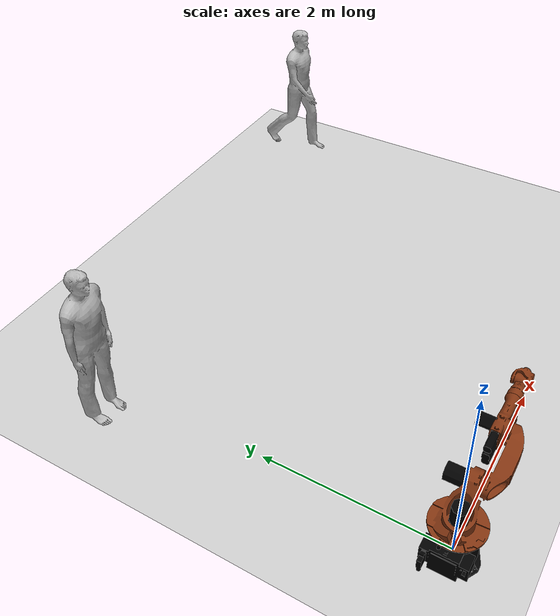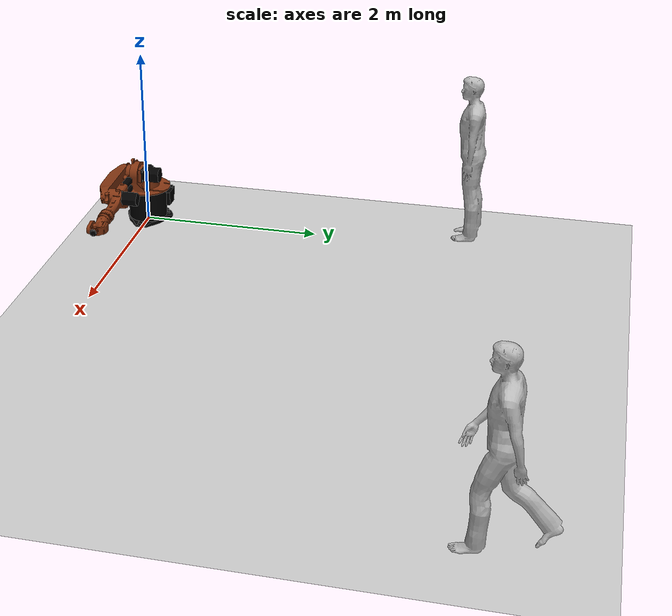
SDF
<sdf version="1.6">
 <world name="default">
  <light name="sun" type="directional">
   <pose>0 0 10 0 -0 0</pose>
   <diffuse>0.8 0.8 0.8 1</diffuse>
   <specular>0.2 0.2 0.2 1</specular>
   <attenuation>
    <range>1000</range>
    <constant>0.9</constant>
    <linear>0.01</linear>
    <quadratic>0.001</quadratic>
   </attenuation>
   <direction>-0.5 0.1 -0.9</direction>
  </light>
  <model name="ground_plane">
   <static>1</static>
   <link name="link">
    <collision name="collision">
     <geometry><plane><normal>0 0 1</normal><size>100 100</size></plane></geometry>
     <surface><friction><ode><mu>100</mu><mu2>50</mu2></ode></friction></surface>
    </collision>
    <visual name="visual">
     <cast_shadows>0</cast_shadows>
     <geometry><plane><normal>0 0 1</normal><size>100 100</size></plane></geometry>
     <material>
      <script><uri>file://media/materials/scripts/gazebo.material</uri><name>Gazebo/Grey</name></script>
     </material>
    </visual>
   </link>
  </model>
  <gravity>0 0 -9.8</gravity>
  <magnetic_field>6e-06 2.3e-05 -4.2e-05</magnetic_field>
  <atmosphere type="adiabatic"/>
  <physics name="default_physics" default="0" type="ode">
   <max_step_size>0.001</max_step_size>
   <real_time_factor>1</real_time_factor>
   <real_time_update_rate>1000</real_time_update_rate>
  </physics>
  <scene><ambient>0.4 0.4 0.4 1</ambient><background>0.7 0.7 0.7 1</background><shadows>1</shadows></scene>
  <spherical_coordinates>
   <surface_model>EARTH_WGS84</surface_model>
   <latitude_deg>0</latitude_deg>
   <longitude_deg>0</longitude_deg>
   <elevation>0</elevation>
   <heading_deg>0</heading_deg>
  </spherical_coordinates>
  <model name="kuka_kr16_2">
   <link name="base_link">
    <inertial>
     <mass>2</mass>
     <inertia><ixx>0.01</ixx><ixy>0</ixy><ixz>0</ixz><iyy>0.01</iyy><iyz>0</iyz><izz>0.01</izz></inertia>
    </inertial>
    <collision name="base_link_collision">
     <geometry>
      <mesh>
       <scale>1 1 1</scale>
       <uri>/home/yesser/ros_qtc_plugin/src/rvizglabre/modelos/kr16_2/collision/base_link.stl</uri>
      </mesh>
     </geometry>
    </collision>
    <visual name="base_link_visual">
     <geometry>
      <mesh>
       <scale>1 1 1</scale>
       <uri>/home/yesser/ros_qtc_plugin/src/rvizglabre/modelos/kr16_2/visual/base_link.dae</uri>
      </mesh>
     </geometry>
    </visual>
   </link>
   <joint name="world-base_link-fixed" type="fixed"><child>base_link</child><parent>world</parent></joint>
   <link name="link_1">
    <pose>0 0 0.675 0 -0 0</pose>
    <inertial>
     <mass>2</mass>
     <inertia><ixx>0.01</ixx><ixy>0</ixy><ixz>0</ixz><iyy>0.01</iyy><iyz>0</iyz><izz>0.01</izz></inertia>
    </inertial>
    <collision name="link_1_collision">
     <geometry>
      <mesh>
       <scale>1 1 1</scale>
       <uri>/home/yesser/ros_qtc_plugin/src/rvizglabre/modelos/kr16_2/collision/link_1.stl</uri>
      </mesh>
     </geometry>
    </collision>
    <visual name="link_1_visual">
     <geometry>
      <mesh>
       <scale>1 1 1</scale>
       <uri>/home/yesser/ros_qtc_plugin/src/rvizglabre/modelos/kr16_2/visual/link_1.dae</uri>
      </mesh>
     </geometry>
    </visual>
   </link>
   <joint name="joint_1" type="revolute">
    <child>link_1</child>
    <parent>base_link</parent>
    <axis>
     <xyz>0 0 -1</xyz>
     <limit><lower>-3.22886</lower><upper>3.22886</upper><velocity>102.72271</velocity></limit>
    </axis>
   </joint>
   <link name="link_2">
    <pose>0.26 0 0.675 0 -0 0</pose>
    <inertial>
     <mass>2</mass>
     <inertia><ixx>0.01</ixx><ixy>0</ixy><ixz>0</ixz><iyy>0.01</iyy><iyz>0</iyz><izz>0.01</izz></inertia>
    </inertial>
    <collision name="link_2_collision">
     <geometry>
      <mesh>
       <scale>1 1 1</scale>
       <uri>/home/yesser/ros_qtc_plugin/src/rvizglabre/modelos/kr16_2/collision/link_2.stl</uri>
      </mesh>
     </geometry>
    </collision>
    <visual name="link_2_visual">
     <geometry>
      <mesh>
       <scale>1 1 1</scale>
       <uri>/home/yesser/ros_qtc_plugin/src/rvizglabre/modelos/kr16_2/visual/link_2.dae</uri>
      </mesh>
     </geometry>
    </visual>
   </link>
   <joint name="joint_2" type="revolute">
    <child>link_2</child>
    <parent>link_1</parent>
    <axis>
     <xyz>0 1 0</xyz>
     <limit><lower>-2.70526</lower><upper>0.610865</upper><velocity>2.72271</velocity></limit>
    </axis>
   </joint>
   <link name="link_3">
    <pose>0.94 0 0.675 0 -0 0</pose>
    <inertial>
     <mass>2</mass>
     <inertia><ixx>0.01</ixx><ixy>0</ixy><ixz>0</ixz><iyy>0.01</iyy><iyz>0</iyz><izz>0.01</izz></inertia>
    </inertial>
    <collision name="link_3_collision">
     <geometry>
      <mesh>
       <scale>1 1 1</scale>
       <uri>/home/yesser/ros_qtc_plugin/src/rvizglabre/modelos/kr16_2/collision/link_3.stl</uri>
      </mesh>
     </geometry>
    </collision>
    <visual name="link_3_visual">
     <geometry>
      <mesh>
       <scale>1 1 1</scale>
       <uri>/home/yesser/ros_qtc_plugin/src/rvizglabre/modelos/kr16_2/visual/link_3.dae</uri>
      </mesh>
     </geometry>
    </visual>
   </link>
   <joint name="joint_3" type="revolute">
    <child>link_3</child>
    <parent>link_2</parent>
    <axis>
     <xyz>0 1 0</xyz>
     <limit><lower>-2.26893</lower><upper>2.68781</upper><velocity>2.72271</velocity></limit>
    </axis>
   </joint>
   <link name="link_4">
    <pose>1.61 0 0.64 0 -0 0</pose>
    <inertial>
     <mass>2</mass>
     <inertia><ixx>0.01</ixx><ixy>0</ixy><ixz>0</ixz><iyy>0.01</iyy><iyz>0</iyz><izz>0.01</izz></inertia>
    </inertial>
    <collision name="link_4_collision">
     <geometry>
      <mesh>
       <scale>1 1 1</scale>
       <uri>/home/yesser/ros_qtc_plugin/src/rvizglabre/modelos/kr16_2/collision/link_4.stl</uri>
      </mesh>
     </geometry>
    </collision>
    <visual name="link_4_visual">
     <geometry>
      <mesh>
       <scale>1 1 1</scale>
       <uri>/home/yesser/ros_qtc_plugin/src/rvizglabre/modelos/kr16_2/visual/link_4.dae</uri>
      </mesh>
     </geometry>
    </visual>
   </link>
   <joint name="joint_4" type="revolute">
    <child>link_4</child>
    <parent>link_3</parent>
    <axis>
     <xyz>-1 0 0</xyz>
     <limit><lower>-6.10865</lower><upper>6.10865</upper><velocity>5.75959</velocity></limit>
    </axis>
   </joint>
   <link name="link_5">
    <pose>1.61 0 0.64 0 -0 0</pose>
    <inertial>
     <mass>2</mass>
     <inertia><ixx>0.01</ixx><ixy>0</ixy><ixz>0</ixz><iyy>0.01</iyy><iyz>0</iyz><izz>0.01</izz></inertia>
    </inertial>
    <collision name="link_5_collision">
     <geometry>
      <mesh>
       <scale>1 1 1</scale>
       <uri>/home/yesser/ros_qtc_plugin/src/rvizglabre/modelos/kr16_2/collision/link_5.stl</uri>
      </mesh>
     </geometry>
    </collision>
    <visual name="link_5_visual">
     <geometry>
      <mesh>
       <scale>1 1 1</scale>
       <uri>/home/yesser/ros_qtc_plugin/src/rvizglabre/modelos/kr16_2/visual/link_5.dae</uri>
      </mesh>
     </geometry>
    </visual>
   </link>
   <joint name="joint_5" type="revolute">
    <child>link_5</child>
    <parent>link_4</parent>
    <axis>
     <xyz>0 1 0</xyz>
     <limit><lower>-2.26893</lower><upper>2.26893</upper><velocity>5.75959</velocity></limit>
    </axis>
   </joint>
   <link name="link_6">
    <pose>1.61 0 0.64 0 -0 0</pose>
    <inertial>
     <mass>2</mass>
     <inertia><ixx>0.01</ixx><ixy>0</ixy><ixz>0</ixz><iyy>0.01</iyy><iyz>0</iyz><izz>0.01</izz></inertia>
    </inertial>
    <collision name="link_6_collision">
     <geometry>
      <mesh>
       <scale>1 1 1</scale>
       <uri>/home/yesser/ros_qtc_plugin/src/rvizglabre/modelos/kr16_2/collision/link_6.stl</uri>
      </mesh>
     </geometry>
    </collision>
    <visual name="link_6_visual">
     <geometry>
      <mesh>
       <scale>1 1 1</scale>
       <uri>/home/yesser/ros_qtc_plugin/src/rvizglabre/modelos/kr16_2/visual/link_6.dae</uri>
      </mesh>
     </geometry>
    </visual>
   </link>
   <joint name="joint_6" type="revolute">
    <child>link_6</child>
    <parent>link_5</parent>
    <axis>
     <xyz>-1 0 0</xyz>
     <limit><lower>-6.10865</lower><upper>6.10865</upper><velocity>10.7338</velocity></limit>
    </axis>
   </joint>
   <plugin name="joint_controller" filename="libjoint_controller_gz.so"/>
  </model>
  <model name="person_walking">
   <link name="link">
    <inertial>
     <pose>0 0 0.95 0 -0 0</pose>
     <mass>80</mass>
     <inertia><ixx>27.82</ixx><ixy>0</ixy><ixz>0</ixz><iyy>24.88</iyy><iyz>0</iyz><izz>4.57</izz></inertia>
    </inertial>
    <collision name="bottom">
     <pose>0 0 0.01 0 -0 0</pose>
     <geometry><box><size>0.35 0.75 0.02</size></box></geometry>
    </collision>
    <collision name="person">
     <pose>0 0 -0.02 0 -0 0</pose>
     <geometry><mesh><uri>model://person_walking/meshes/walking.dae</uri></mesh></geometry>
    </collision>
    <visual name="visual">
     <pose>0 0 -0.02 0 -0 0</pose>
     <geometry><mesh><uri>model://person_walking/meshes/walking.dae</uri></mesh></geometry>
    </visual>
   </link>
   <pose>5.13502 4.60607 -1e-06 1e-06 -1e-06 -9e-06</pose>
  </model>
  <model name="person_standing">
   <link name="link">
    <inertial>
     <pose>0 -0.1 0.95 0 -0 0</pose>
     <mass>80</mass>
     <inertia><ixx>24.88</ixx><ixy>0</ixy><ixz>0</ixz><iyy>25.73</iyy><iyz>0</iyz><izz>2.48</izz></inertia>
    </inertial>
    <collision name="bottom">
     <pose>0 -0.1 0.01 0 -0 0</pose>
     <geometry><box><size>0.5 0.35 0.02</size></box></geometry>
    </collision>
    <collision name="person">
     <pose>0 0 0.02 0.04 -0 0</pose>
     <geometry><mesh><uri>model://person_standing/meshes/standing.dae</uri></mesh></geometry>
    </collision>
    <visual name="visual">
     <pose>0 0 0.02 0.04 -0 0</pose>
     <geometry><mesh><uri>model://person_standing/meshes/standing.dae</uri></mesh></geometry>
    </visual>
   </link>
   <pose>-0.325446 3.79192 0 0 -1e-06 0.00017</pose>
  </model>
 </world>
</sdf>
